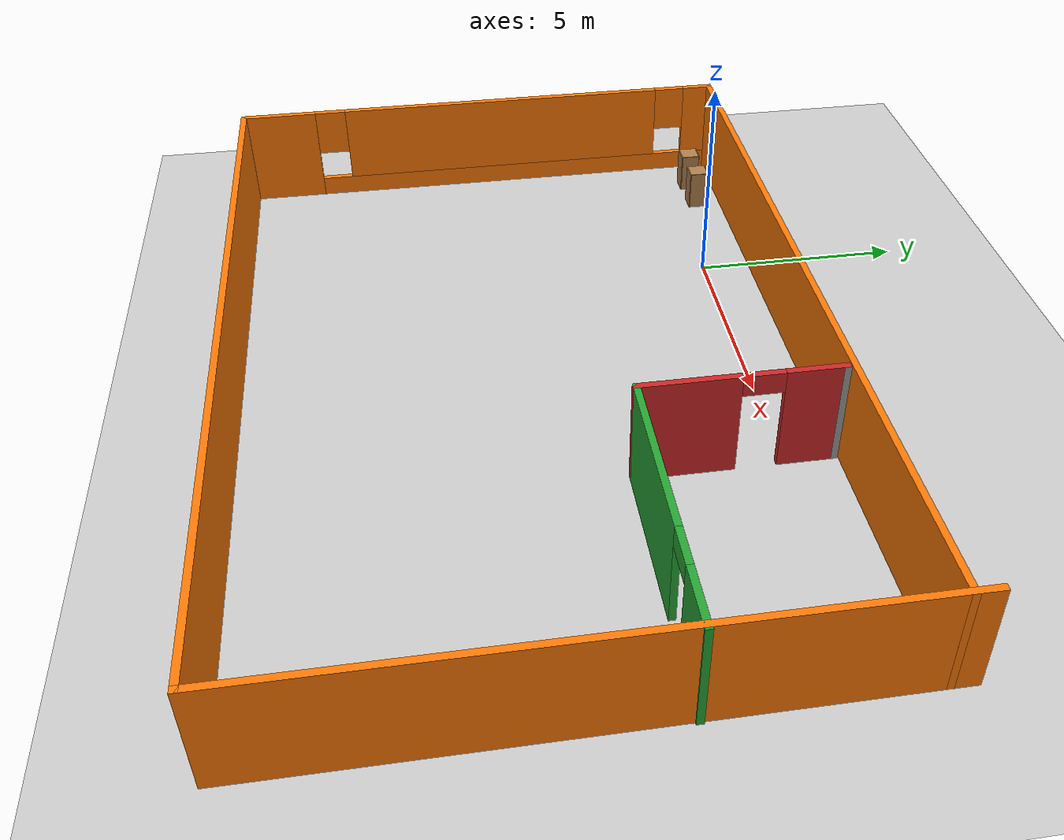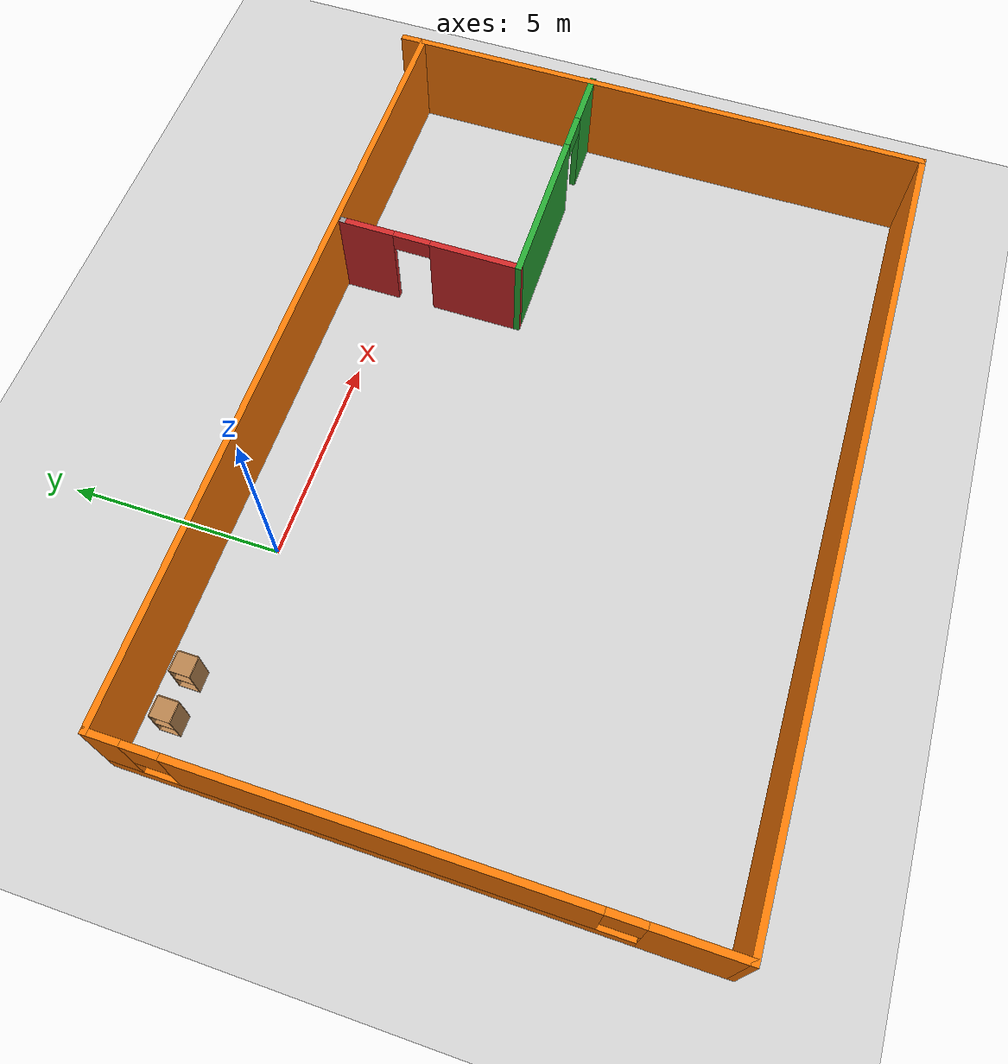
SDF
<sdf version="1.6">
 <world name="default">
  <light name="sun" type="directional">
   <pose>0 0 10 0 -0 0</pose>
   <diffuse>0.8 0.8 0.8 1</diffuse>
   <specular>0.2 0.2 0.2 1</specular>
   <attenuation>
    <range>1000</range>
    <constant>0.9</constant>
    <linear>0.01</linear>
    <quadratic>0.001</quadratic>
   </attenuation>
   <direction>-0.5 0.1 -0.9</direction>
  </light>
  <model name="ground_plane">
   <static>1</static>
   <link name="link">
    <collision name="collision">
     <geometry><plane><normal>0 0 1</normal><size>100 100</size></plane></geometry>
     <surface><friction><ode><mu>100</mu><mu2>50</mu2></ode></friction></surface>
    </collision>
    <visual name="visual">
     <cast_shadows>0</cast_shadows>
     <geometry><plane><normal>0 0 1</normal><size>100 100</size></plane></geometry>
     <material>
      <script><uri>file://media/materials/scripts/gazebo.material</uri><name>Gazebo/Grey</name></script>
     </material>
    </visual>
   </link>
  </model>
  <gravity>0 0 -9.8</gravity>
  <magnetic_field>6e-06 2.3e-05 -4.2e-05</magnetic_field>
  <atmosphere type="adiabatic"/>
  <physics name="default_physics" default="0" type="ode">
   <max_step_size>0.001</max_step_size>
   <real_time_factor>1</real_time_factor>
   <real_time_update_rate>1000</real_time_update_rate>
  </physics>
  <scene><ambient>0.4 0.4 0.4 1</ambient><background>0.7 0.7 0.7 1</background><shadows>1</shadows></scene>
  <spherical_coordinates>
   <surface_model>EARTH_WGS84</surface_model>
   <latitude_deg>0</latitude_deg>
   <longitude_deg>0</longitude_deg>
   <elevation>0</elevation>
   <heading_deg>0</heading_deg>
  </spherical_coordinates>
  <model name="cabinet_clone_1">
   <static>1</static>
   <link name="cabinet_bottom_plate">
    <inertial>
     <pose>0 0 -1 0 -0 0</pose>
     <inertia><ixx>2.05</ixx><ixy>0</ixy><ixz>0</ixz><iyy>2.05</iyy><iyz>0</iyz><izz>2.05</izz></inertia>
     <mass>25</mass>
    </inertial>
    <collision name="cabinet_bottom_plate_geom">
     <pose>0 0 0.01 0 -0 0</pose>
     <geometry><box><size>0.45 0.45 0.02</size></box></geometry>
    </collision>
    <visual name="cabinet_bottom_plate_geom_visual">
     <pose>0 0 0.01 0 -0 0</pose>
     <geometry><box><size>0.45 0.45 0.02</size></box></geometry>
     <material>
      <script><uri>file://media/materials/scripts/gazebo.material</uri><name>Gazebo/Wood</name></script>
     </material>
    </visual>
    <collision name="cabinet_bottom_plate_geom_cabinet_back_plate">
     <pose>0.235 0 0.51 0 -0 0</pose>
     <geometry><box><size>0.02 0.45 1.02</size></box></geometry>
    </collision>
    <visual name="cabinet_bottom_plate_geom_cabinet_back_plate_visual">
     <pose>0.235 0 0.51 0 -0 0</pose>
     <geometry><box><size>0.02 0.45 1.02</size></box></geometry>
     <material>
      <script><uri>file://media/materials/scripts/gazebo.material</uri><name>Gazebo/Wood</name></script>
     </material>
    </visual>
    <collision name="cabinet_bottom_plate_geom_cabinet_left_plate">
     <pose>0 0.235 0.51 0 -0 0</pose>
     <geometry><box><size>0.45 0.02 1.02</size></box></geometry>
    </collision>
    <visual name="cabinet_bottom_plate_geom_cabinet_left_plate_visual">
     <pose>0 0.235 0.51 0 -0 0</pose>
     <geometry><box><size>0.45 0.02 1.02</size></box></geometry>
     <material>
      <script><uri>file://media/materials/scripts/gazebo.material</uri><name>Gazebo/Wood</name></script>
     </material>
    </visual>
    <collision name="cabinet_bottom_plate_geom_cabinet_middle_plate">
     <pose>0 0 0.51 0 -0 0</pose>
     <geometry><box><size>0.45 0.45 0.02</size></box></geometry>
    </collision>
    <visual name="cabinet_bottom_plate_geom_cabinet_middle_plate_visual">
     <pose>0 0 0.51 0 -0 0</pose>
     <geometry><box><size>0.45 0.45 0.02</size></box></geometry>
     <material>
      <script><uri>file://media/materials/scripts/gazebo.material</uri><name>Gazebo/Wood</name></script>
     </material>
    </visual>
    <collision name="cabinet_bottom_plate_geom_cabinet_right_plate">
     <pose>0 -0.235 0.51 0 -0 0</pose>
     <geometry><box><size>0.45 0.02 1.02</size></box></geometry>
    </collision>
    <visual name="cabinet_bottom_plate_geom_cabinet_right_plate_visual">
     <pose>0 -0.235 0.51 0 -0 0</pose>
     <geometry><box><size>0.45 0.02 1.02</size></box></geometry>
     <material>
      <script><uri>file://media/materials/scripts/gazebo.material</uri><name>Gazebo/Wood</name></script>
     </material>
    </visual>
    <collision name="cabinet_bottom_plate_geom_cabinet_top_plate">
     <pose>0 0 1.01 0 -0 0</pose>
     <geometry><box><size>0.45 0.45 0.02</size></box></geometry>
    </collision>
    <visual name="cabinet_bottom_plate_geom_cabinet_top_plate_visual">
     <pose>0 0 1.01 0 -0 0</pose>
     <geometry><box><size>0.45 0.45 0.02</size></box></geometry>
     <material>
      <script><uri>file://media/materials/scripts/gazebo.material</uri><name>Gazebo/Wood</name></script>
     </material>
    </visual>
   </link>
   <pose>-4.23192 0.534603 0 0 -0 0</pose>
  </model>
  <model name="cabinet_clone_2">
   <static>1</static>
   <link name="cabinet_bottom_plate">
    <inertial>
     <pose>0 0 -1 0 -0 0</pose>
     <inertia><ixx>2.05</ixx><ixy>0</ixy><ixz>0</ixz><iyy>2.05</iyy><iyz>0</iyz><izz>2.05</izz></inertia>
     <mass>25</mass>
    </inertial>
    <collision name="cabinet_bottom_plate_geom">
     <pose>0 0 0.01 0 -0 0</pose>
     <geometry><box><size>0.45 0.45 0.02</size></box></geometry>
    </collision>
    <visual name="cabinet_bottom_plate_geom_visual">
     <pose>0 0 0.01 0 -0 0</pose>
     <geometry><box><size>0.45 0.45 0.02</size></box></geometry>
     <material>
      <script><uri>file://media/materials/scripts/gazebo.material</uri><name>Gazebo/Wood</name></script>
     </material>
    </visual>
    <collision name="cabinet_bottom_plate_geom_cabinet_back_plate">
     <pose>0.235 0 0.51 0 -0 0</pose>
     <geometry><box><size>0.02 0.45 1.02</size></box></geometry>
    </collision>
    <visual name="cabinet_bottom_plate_geom_cabinet_back_plate_visual">
     <pose>0.235 0 0.51 0 -0 0</pose>
     <geometry><box><size>0.02 0.45 1.02</size></box></geometry>
     <material>
      <script><uri>file://media/materials/scripts/gazebo.material</uri><name>Gazebo/Wood</name></script>
     </material>
    </visual>
    <collision name="cabinet_bottom_plate_geom_cabinet_left_plate">
     <pose>0 0.235 0.51 0 -0 0</pose>
     <geometry><box><size>0.45 0.02 1.02</size></box></geometry>
    </collision>
    <visual name="cabinet_bottom_plate_geom_cabinet_left_plate_visual">
     <pose>0 0.235 0.51 0 -0 0</pose>
     <geometry><box><size>0.45 0.02 1.02</size></box></geometry>
     <material>
      <script><uri>file://media/materials/scripts/gazebo.material</uri><name>Gazebo/Wood</name></script>
     </material>
    </visual>
    <collision name="cabinet_bottom_plate_geom_cabinet_middle_plate">
     <pose>0 0 0.51 0 -0 0</pose>
     <geometry><box><size>0.45 0.45 0.02</size></box></geometry>
    </collision>
    <visual name="cabinet_bottom_plate_geom_cabinet_middle_plate_visual">
     <pose>0 0 0.51 0 -0 0</pose>
     <geometry><box><size>0.45 0.45 0.02</size></box></geometry>
     <material>
      <script><uri>file://media/materials/scripts/gazebo.material</uri><name>Gazebo/Wood</name></script>
     </material>
    </visual>
    <collision name="cabinet_bottom_plate_geom_cabinet_right_plate">
     <pose>0 -0.235 0.51 0 -0 0</pose>
     <geometry><box><size>0.45 0.02 1.02</size></box></geometry>
    </collision>
    <visual name="cabinet_bottom_plate_geom_cabinet_right_plate_visual">
     <pose>0 -0.235 0.51 0 -0 0</pose>
     <geometry><box><size>0.45 0.02 1.02</size></box></geometry>
     <material>
      <script><uri>file://media/materials/scripts/gazebo.material</uri><name>Gazebo/Wood</name></script>
     </material>
    </visual>
    <collision name="cabinet_bottom_plate_geom_cabinet_top_plate">
     <pose>0 0 1.01 0 -0 0</pose>
     <geometry><box><size>0.45 0.45 0.02</size></box></geometry>
    </collision>
    <visual name="cabinet_bottom_plate_geom_cabinet_top_plate_visual">
     <pose>0 0 1.01 0 -0 0</pose>
     <geometry><box><size>0.45 0.45 0.02</size></box></geometry>
     <material>
      <script><uri>file://media/materials/scripts/gazebo.material</uri><name>Gazebo/Wood</name></script>
     </material>
    </visual>
   </link>
   <pose>-3.24726 0.552978 0 0 -0 0</pose>
  </model>
  <model name="Build">
   <pose>4.09224 -4.90731 0 0 -0 0</pose>
   <link name="Wall_15">
    <collision name="Wall_15_Collision">
     <geometry><box><size>13.5 0.15 2.5</size></box></geometry>
     <pose>0 0 1.25 0 -0 0</pose>
    </collision>
    <visual name="Wall_15_Visual">
     <pose>0 0 1.25 0 -0 0</pose>
     <geometry><box><size>13.5 0.15 2.5</size></box></geometry>
     <material>
      <script><uri>file://media/materials/scripts/gazebo.material</uri><name>Gazebo/Grey</name></script>
      <ambient>0.996078 0.47451 0.0196078 1</ambient>
     </material>
     <meta><layer>0</layer></meta>
    </visual>
    <pose>9.40326 0 0 0 -0 1.5708</pose>
   </link>
   <link name="Wall_17">
    <collision name="Wall_17_Collision">
     <geometry><box><size>19 0.15 2.5</size></box></geometry>
     <pose>0 0 1.25 0 -0 0</pose>
    </collision>
    <visual name="Wall_17_Visual">
     <pose>0 0 1.25 0 -0 0</pose>
     <geometry><box><size>19 0.15 2.5</size></box></geometry>
     <material>
      <script><uri>file://media/materials/scripts/gazebo.material</uri><name>Gazebo/Grey</name></script>
      <ambient>0.996078 0.47451 0.0196078 1</ambient>
     </material>
     <meta><layer>0</layer></meta>
    </visual>
    <pose>-0.021742 -6.675 0 0 -0 3.14159</pose>
   </link>
   <link name="Wall_18">
    <pose>-9.44674 -0.25 0 0 -0 1.5708</pose>
    <visual name="Wall_18_Visual_0">
     <pose>-5.51617 0 1.25 0 -0 0</pose>
     <geometry><box><size>1.96766 0.15 2.5</size></box></geometry>
     <material>
      <script><uri>file://media/materials/scripts/gazebo.material</uri><name>Gazebo/Grey</name></script>
      <ambient>0.996078 0.47451 0.0196078 1</ambient>
     </material>
     <meta><layer>0</layer></meta>
    </visual>
    <collision name="Wall_18_Collision_0">
     <geometry><box><size>1.96766 0.15 2.5</size></box></geometry>
     <pose>-5.51617 0 1.25 0 -0 0</pose>
    </collision>
    <visual name="Wall_18_Visual_1">
     <pose>0.983832 0 0.25 0 -0 0</pose>
     <geometry><box><size>11.0323 0.15 0.5</size></box></geometry>
     <material>
      <script><uri>file://media/materials/scripts/gazebo.material</uri><name>Gazebo/Grey</name></script>
      <ambient>0.996078 0.47451 0.0196078 1</ambient>
     </material>
     <meta><layer>0</layer></meta>
    </visual>
    <collision name="Wall_18_Collision_1">
     <geometry><box><size>11.0323 0.15 0.5</size></box></geometry>
     <pose>0.983832 0 0.25 0 -0 0</pose>
    </collision>
    <visual name="Wall_18_Visual_2">
     <pose>0.575717 0 1.5 0 -0 0</pose>
     <geometry><box><size>8.61611 0.15 2</size></box></geometry>
     <material>
      <script><uri>file://media/materials/scripts/gazebo.material</uri><name>Gazebo/Grey</name></script>
      <ambient>0.996078 0.47451 0.0196078 1</ambient>
     </material>
     <meta><layer>0</layer></meta>
    </visual>
    <collision name="Wall_18_Collision_2">
     <geometry><box><size>8.61611 0.15 2</size></box></geometry>
     <pose>0.575717 0 1.5 0 -0 0</pose>
    </collision>
    <visual name="Wall_18_Visual_3">
     <pose>6.09189 0 1.5 0 -0 0</pose>
     <geometry><box><size>0.81623 0.15 2</size></box></geometry>
     <material>
      <script><uri>file://media/materials/scripts/gazebo.material</uri><name>Gazebo/Grey</name></script>
      <ambient>0.996078 0.47451 0.0196078 1</ambient>
     </material>
     <meta><layer>0</layer></meta>
    </visual>
    <collision name="Wall_18_Collision_3">
     <geometry><box><size>0.81623 0.15 2</size></box></geometry>
     <pose>6.09189 0 1.5 0 -0 0</pose>
    </collision>
    <visual name="Wall_18_Visual_4">
     <pose>-4.13234 0 1.9 0 -0 0</pose>
     <geometry><box><size>0.8 0.15 1.2</size></box></geometry>
     <material>
      <script><uri>file://media/materials/scripts/gazebo.material</uri><name>Gazebo/Grey</name></script>
      <ambient>0.996078 0.47451 0.0196078 1</ambient>
     </material>
     <meta><layer>0</layer></meta>
    </visual>
    <collision name="Wall_18_Collision_4">
     <geometry><box><size>0.8 0.15 1.2</size></box></geometry>
     <pose>-4.13234 0 1.9 0 -0 0</pose>
    </collision>
    <visual name="Wall_18_Visual_5">
     <pose>5.28377 0 1.9 0 -0 0</pose>
     <geometry><box><size>0.8 0.15 1.2</size></box></geometry>
     <material>
      <script><uri>file://media/materials/scripts/gazebo.material</uri><name>Gazebo/Grey</name></script>
      <ambient>0.996078 0.47451 0.0196078 1</ambient>
     </material>
     <meta><layer>0</layer></meta>
    </visual>
    <collision name="Wall_18_Collision_5">
     <geometry><box><size>0.8 0.15 1.2</size></box></geometry>
     <pose>5.28377 0 1.9 0 -0 0</pose>
    </collision>
   </link>
   <link name="Wall_19">
    <collision name="Wall_19_Collision">
     <geometry><box><size>19 0.15 2.5</size></box></geometry>
     <pose>0 0 1.25 0 -0 0</pose>
    </collision>
    <visual name="Wall_19_Visual">
     <pose>0 0 1.25 0 -0 0</pose>
     <geometry><box><size>19 0.15 2.5</size></box></geometry>
     <material>
      <script><uri>file://media/materials/scripts/gazebo.material</uri><name>Gazebo/Grey</name></script>
      <ambient>0.996078 0.47451 0.0196078 1</ambient>
     </material>
     <meta><layer>0</layer></meta>
    </visual>
    <pose>-0.021742 6.175 0 0 -0 0</pose>
   </link>
   <link name="Wall_21">
    <pose>6.39674 1.65638 0 0 -0 3.14159</pose>
    <visual name="Wall_21_Visual_0">
     <pose>-2.42486 0 1.25 0 -0 0</pose>
     <geometry><box><size>1.40029 0.15 2.5</size></box></geometry>
     <material>
      <script><uri>file://media/materials/scripts/gazebo.material</uri><name>Gazebo/Green</name></script>
      <ambient>1 1 1 1</ambient>
     </material>
     <meta><layer>0</layer></meta>
    </visual>
    <collision name="Wall_21_Collision_0">
     <geometry><box><size>1.40029 0.15 2.5</size></box></geometry>
     <pose>-2.42486 0 1.25 0 -0 0</pose>
    </collision>
    <visual name="Wall_21_Visual_1">
     <pose>1.15014 0 1.25 0 -0 0</pose>
     <geometry><box><size>3.94971 0.15 2.5</size></box></geometry>
     <material>
      <script><uri>file://media/materials/scripts/gazebo.material</uri><name>Gazebo/Green</name></script>
      <ambient>1 1 1 1</ambient>
     </material>
     <meta><layer>0</layer></meta>
    </visual>
    <collision name="Wall_21_Collision_1">
     <geometry><box><size>3.94971 0.15 2.5</size></box></geometry>
     <pose>1.15014 0 1.25 0 -0 0</pose>
    </collision>
    <visual name="Wall_21_Visual_2">
     <pose>-1.27471 0 2.25 0 -0 0</pose>
     <geometry><box><size>0.9 0.15 0.5</size></box></geometry>
     <material>
      <script><uri>file://media/materials/scripts/gazebo.material</uri><name>Gazebo/Green</name></script>
      <ambient>1 1 1 1</ambient>
     </material>
     <meta><layer>0</layer></meta>
    </visual>
    <collision name="Wall_21_Collision_2">
     <geometry><box><size>0.9 0.15 0.5</size></box></geometry>
     <pose>-1.27471 0 2.25 0 -0 0</pose>
    </collision>
   </link>
   <link name="Wall_22">
    <pose>3.34674 3.83138 0 0 -0 1.5708</pose>
    <visual name="Wall_22_Visual_0">
     <pose>-1.12545 0 1.25 0 -0 0</pose>
     <geometry><box><size>2.2491 0.15 2.5</size></box></geometry>
     <material>
      <script><uri>file://media/materials/scripts/gazebo.material</uri><name>Gazebo/Red</name></script>
      <ambient>1 1 1 1</ambient>
     </material>
     <meta><layer>0</layer></meta>
    </visual>
    <collision name="Wall_22_Collision_0">
     <geometry><box><size>2.2491 0.15 2.5</size></box></geometry>
     <pose>-1.12545 0 1.25 0 -0 0</pose>
    </collision>
    <visual name="Wall_22_Visual_1">
     <pose>1.57455 0 1.25 0 -0 0</pose>
     <geometry><box><size>1.3509 0.15 2.5</size></box></geometry>
     <material>
      <script><uri>file://media/materials/scripts/gazebo.material</uri><name>Gazebo/Red</name></script>
      <ambient>1 1 1 1</ambient>
     </material>
     <meta><layer>0</layer></meta>
    </visual>
    <collision name="Wall_22_Collision_1">
     <geometry><box><size>1.3509 0.15 2.5</size></box></geometry>
     <pose>1.57455 0 1.25 0 -0 0</pose>
    </collision>
    <visual name="Wall_22_Visual_2">
     <pose>0.449101 0 2.25 0 -0 0</pose>
     <geometry><box><size>0.9 0.15 0.5</size></box></geometry>
     <material>
      <script><uri>file://media/materials/scripts/gazebo.material</uri><name>Gazebo/Red</name></script>
      <ambient>1 1 1 1</ambient>
     </material>
     <meta><layer>0</layer></meta>
    </visual>
    <collision name="Wall_22_Collision_2">
     <geometry><box><size>0.9 0.15 0.5</size></box></geometry>
     <pose>0.449101 0 2.25 0 -0 0</pose>
    </collision>
   </link>
   <link name="Wall_23">
    <collision name="Wall_23_Collision">
     <geometry><box><size>0.15 0.15 2.5</size></box></geometry>
     <pose>0 0 1.25 0 -0 0</pose>
    </collision>
    <visual name="Wall_23_Visual">
     <pose>0 0 1.25 0 -0 0</pose>
     <geometry><box><size>0.15 0.15 2.5</size></box></geometry>
     <material>
      <script><uri>file://media/materials/scripts/gazebo.material</uri><name>Gazebo/Grey</name></script>
      <ambient>1 1 1 1</ambient>
     </material>
     <meta><layer>0</layer></meta>
    </visual>
    <pose>3.34674 6.00638 0 0 -0 0</pose>
   </link>
   <static>1</static>
  </model>
 </world>
</sdf>
